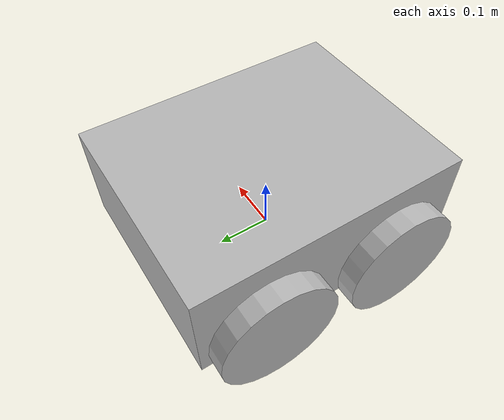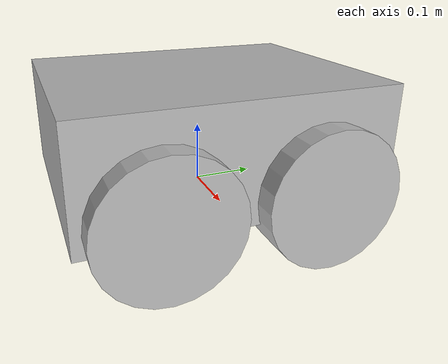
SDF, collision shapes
<sdf version='1.6'>
    <model name='Pioneer3AT'>
      <pose frame=''>0 0 0.1 0 -0 1.57079</pose>
      <static>0</static>
      <link name='chassis'>
        <inertial>
          <mass>14</mass>
          <inertia>
            <ixx>0.3338</ixx>
            <ixy>0</ixy>
            <ixz>0</ixz>
            <iyy>0.4783</iyy>
            <iyz>0</iyz>
            <izz>0.3338</izz>
          </inertia>
        </inertial>
        <collision name='collision'>
          <geometry>
            <box>
              <size>0.501 0.4 0.19</size>
            </box>
          </geometry>
          <surface>
            <bounce/>
            <friction>
              <ode/>
              <torsional>
                <ode/>
              </torsional>
            </friction>
            <contact>
              <ode/>
            </contact>
          </surface>
          <max_contacts>10</max_contacts>
        </collision>
        <visual name='visual'>
          <geometry>
            <mesh>
              <uri>model://pioneer3at/meshes/chassis.dae</uri>
              <scale>1 1 1</scale>
            </mesh>
          </geometry>
        </visual>
        <velocity_decay>
          <linear>0</linear>
          <angular>0</angular>
        </velocity_decay>
        <self_collide>0</self_collide>
        <kinematic>0</kinematic>
        <gravity>1</gravity>
      </link>
      <link name='right_front_wheel'>
        <pose frame=''>0.125 -0.201 -0.06 1.5707 -0 0</pose>
        <collision name='collision'>
          <geometry>
            <cylinder>
              <radius>0.11</radius>
              <length>0.075</length>
            </cylinder>
          </geometry>
          <surface>
            <friction>
              <ode>
                <mu>1</mu>
                <mu2>1</mu2>
                <slip1>0.5</slip1>
                <slip2>0</slip2>
              </ode>
              <torsional>
                <ode/>
              </torsional>
            </friction>
            <bounce/>
            <contact>
              <ode/>
            </contact>
          </surface>
          <max_contacts>10</max_contacts>
        </collision>
        <visual name='visual'>
          <geometry>
            <mesh>
              <uri>model://pioneer3at/meshes/wheel.dae</uri>
              <scale>1 1 1</scale>
            </mesh>
          </geometry>
        </visual>
        <velocity_decay>
          <linear>0</linear>
          <angular>0</angular>
        </velocity_decay>
        <self_collide>0</self_collide>
        <inertial>
          <inertia>
            <ixx>1</ixx>
            <ixy>0</ixy>
            <ixz>0</ixz>
            <iyy>1</iyy>
            <iyz>0</iyz>
            <izz>1</izz>
          </inertia>
          <mass>1</mass>
        </inertial>
        <kinematic>0</kinematic>
        <gravity>1</gravity>
      </link>
      <link name='left_front_wheel'>
        <pose frame=''>0.125 0.201 -0.06 1.5707 -0 0</pose>
        <collision name='collision'>
          <geometry>
            <cylinder>
              <radius>0.11</radius>
              <length>0.075</length>
            </cylinder>
          </geometry>
          <surface>
            <friction>
              <ode>
                <mu>1</mu>
                <mu2>1</mu2>
                <slip1>0.5</slip1>
                <slip2>0</slip2>
              </ode>
              <torsional>
                <ode/>
              </torsional>
            </friction>
            <bounce/>
            <contact>
              <ode/>
            </contact>
          </surface>
          <max_contacts>10</max_contacts>
        </collision>
        <visual name='visual'>
          <geometry>
            <mesh>
              <uri>model://pioneer3at/meshes/wheel.dae</uri>
              <scale>1 1 1</scale>
            </mesh>
          </geometry>
        </visual>
        <velocity_decay>
          <linear>0</linear>
          <angular>0</angular>
        </velocity_decay>
        <self_collide>0</self_collide>
        <inertial>
          <inertia>
            <ixx>1</ixx>
            <ixy>0</ixy>
            <ixz>0</ixz>
            <iyy>1</iyy>
            <iyz>0</iyz>
            <izz>1</izz>
          </inertia>
          <mass>1</mass>
        </inertial>
        <kinematic>0</kinematic>
        <gravity>1</gravity>
      </link>
      <link name='right_rear_wheel'>
        <pose frame=''>-0.125 -0.201 -0.06 1.5707 -0 0</pose>
        <collision name='collision'>
          <geometry>
            <cylinder>
              <radius>0.11</radius>
              <length>0.075</length>
            </cylinder>
          </geometry>
          <surface>
            <friction>
              <ode>
                <mu>1</mu>
                <mu2>1</mu2>
                <slip1>0.5</slip1>
                <slip2>0</slip2>
              </ode>
              <torsional>
                <ode/>
              </torsional>
            </friction>
            <bounce/>
            <contact>
              <ode/>
            </contact>
          </surface>
          <max_contacts>10</max_contacts>
        </collision>
        <visual name='visual'>
          <geometry>
            <mesh>
              <uri>model://pioneer3at/meshes/wheel.dae</uri>
              <scale>1 1 1</scale>
            </mesh>
          </geometry>
        </visual>
        <velocity_decay>
          <linear>0</linear>
          <angular>0</angular>
        </velocity_decay>
        <self_collide>0</self_collide>
        <inertial>
          <inertia>
            <ixx>1</ixx>
            <ixy>0</ixy>
            <ixz>0</ixz>
            <iyy>1</iyy>
            <iyz>0</iyz>
            <izz>1</izz>
          </inertia>
          <mass>1</mass>
        </inertial>
        <kinematic>0</kinematic>
        <gravity>1</gravity>
      </link>
      <link name='left_rear_wheel'>
        <pose frame=''>-0.125 0.201 -0.06 1.5707 -0 0</pose>
        <collision name='collision'>
          <geometry>
            <cylinder>
              <radius>0.11</radius>
              <length>0.075</length>
            </cylinder>
          </geometry>
          <surface>
            <friction>
              <ode>
                <mu>1</mu>
                <mu2>1</mu2>
                <slip1>0.5</slip1>
                <slip2>0</slip2>
              </ode>
              <torsional>
                <ode/>
              </torsional>
            </friction>
            <bounce/>
            <contact>
              <ode/>
            </contact>
          </surface>
          <max_contacts>10</max_contacts>
        </collision>
        <visual name='visual'>
          <geometry>
            <mesh>
              <uri>model://pioneer3at/meshes/wheel.dae</uri>
              <scale>1 1 1</scale>
            </mesh>
          </geometry>
        </visual>
        <velocity_decay>
          <linear>0</linear>
          <angular>0</angular>
        </velocity_decay>
        <self_collide>0</self_collide>
        <inertial>
          <inertia>
            <ixx>1</ixx>
            <ixy>0</ixy>
            <ixz>0</ixz>
            <iyy>1</iyy>
            <iyz>0</iyz>
            <izz>1</izz>
          </inertia>
          <mass>1</mass>
        </inertial>
        <kinematic>0</kinematic>
        <gravity>1</gravity>
      </link>
      <joint name='right_front' type='revolute'>
        <pose frame=''>0 0 0 0 -0 0</pose>
        <child>right_front_wheel</child>
        <parent>chassis</parent>
        <axis>
          <xyz>0 0 -1</xyz>
          <limit>
            <lower>-1e+16</lower>
            <upper>1e+16</upper>
          </limit>
          <use_parent_model_frame>0</use_parent_model_frame>
          <dynamics>
            <spring_reference>0</spring_reference>
            <spring_stiffness>0</spring_stiffness>
          </dynamics>
        </axis>
      </joint>
      <joint name='right_rear' type='revolute'>
        <pose frame=''>0 0 0 0 -0 0</pose>
        <child>right_rear_wheel</child>
        <parent>chassis</parent>
        <axis>
          <xyz>0 0 -1</xyz>
          <limit>
            <lower>-1e+16</lower>
            <upper>1e+16</upper>
          </limit>
          <use_parent_model_frame>0</use_parent_model_frame>
          <dynamics>
            <spring_reference>0</spring_reference>
            <spring_stiffness>0</spring_stiffness>
          </dynamics>
        </axis>
      </joint>
      <joint name='left_front' type='revolute'>
        <pose frame=''>0 0 0 0 -0 0</pose>
        <child>left_front_wheel</child>
        <parent>chassis</parent>
        <axis>
          <xyz>0 0 -1</xyz>
          <limit>
            <lower>-1e+16</lower>
            <upper>1e+16</upper>
          </limit>
          <use_parent_model_frame>0</use_parent_model_frame>
          <dynamics>
            <spring_reference>0</spring_reference>
            <spring_stiffness>0</spring_stiffness>
          </dynamics>
        </axis>
      </joint>
      <joint name='left_rear' type='revolute'>
        <pose frame=''>0 0 0 0 -0 0</pose>
        <child>left_rear_wheel</child>
        <parent>chassis</parent>
        <axis>
          <xyz>0 0 -1</xyz>
          <limit>
            <lower>-1e+16</lower>
            <upper>1e+16</upper>
          </limit>
          <use_parent_model_frame>0</use_parent_model_frame>
          <dynamics>
            <spring_reference>0</spring_reference>
            <spring_stiffness>0</spring_stiffness>
          </dynamics>
        </axis>
      </joint>

      <plugin name='skid_steer_drive_controller' filename='libgazebo_ros_skid_steer_drive.so'>
        <updateRate>20.0</updateRate>
        <leftFrontJoint>left_front</leftFrontJoint>
        <rightFrontJoint>right_front</rightFrontJoint>
        <rightRearJoint>right_rear</rightRearJoint>
        <leftRearJoint>left_rear</leftRearJoint>
        <wheelSeparation>0.5</wheelSeparation>
        <wheelDiameter>0.22</wheelDiameter>
        <commandTopic>/Pioneer3AT/cmd_vel</commandTopic>
        <torque>5.</torque>
      </plugin>
    </model>
</sdf>
